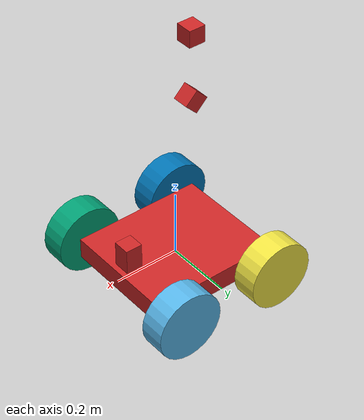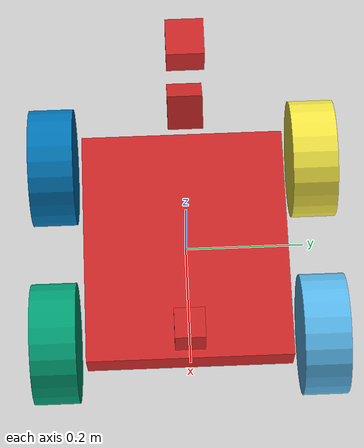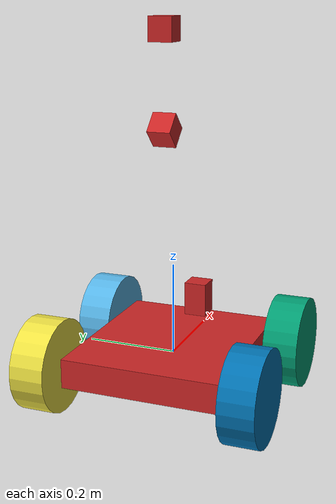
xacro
<?xml version="1.0"?>

<robot name="mecanum" xmlns:xacro="http://www.ros.org/wiki/xacro">

  <!-- include gazebo plugins -->
  <xacro:include filename="$(find mecanum_sim)/urdf/mecanum.gazebo" />

  <xacro:property name="base_width" value="0.3476" />   <!-- 14.5 in -->
  <xacro:property name="base_length" value="0.4" />  <!-- 21 5/8 in -->
  <xacro:property name="base_height" value="0.0635" />   <!-- 2.5 in  -->
  <xacro:property name="wheel_radius" value="0.1016" /> <!-- 4.0 in  -->
  <xacro:property name="wheel_width" value="0.0762" />  <!-- 3.0 in  -->
  <xacro:property name="wheel_gap" value="0.0508" />    <!-- 2.0 in  -->
  <xacro:property name="wheel_setback" value="0.041275" />    <!-- 1 5/8 in  -->
  <xacro:property name="lidar_width" value="0.0508" />    <!-- 2.0 in  -->
  <xacro:property name="lidar_length" value="0.0508" />    <!-- 2.0 in  -->
  <xacro:property name="lidar_height" value="0.0762" />    <!-- 3.0 in  -->
  <xacro:property name="lidar_setback" value="0.0127" />    <!-- 0.5 in  -->
  <xacro:property name="camera_link1" value="0.05" /> <!-- Size of square 'camera' box -->
  <xacro:property name="camera_link2" value="0.05" /> <!-- Size of square 'camera' box -->

  <!--~~~~~~~~~~~~~~~~~~~~~~~~ ~ ROBOT BASE ~ ~~~~~~~~~~~~~~~~~~~~~~~~~~~~~~-->

  <!-- Make a box for robot base -->
  <link name="base_link">

  	<!-- Draw imaginary box around the robot for collision detection -->
    <collision>
      <origin xyz="0 0 0.0" rpy="0 0 0"/>
      <geometry>
       <box size="${base_length} ${base_width} ${base_height}"/>
      </geometry>
    </collision>

    <!-- Describe how to draw the box in 3d -->
    <visual>
      <origin xyz="0 0 0.0" rpy="0 0 0"/>
      <geometry>
	       <box size="${base_length} ${base_width} ${base_height}"/>
      </geometry>
      <material name="red"/>
    </visual>

    <inertial>
      <mass value="1e-3" />
      <origin xyz="0 0 0" rpy="0 0 0"/>
      <inertia ixx="1e-6" ixy="0" ixz="0" iyy="1e-6" iyz="0" izz="1e-6" />
    </inertial>
  </link>

  <link name="fl_link">
      <visual>
        <geometry>
          <cylinder length="${wheel_width}" radius="${wheel_radius}"/>
        </geometry>
        <origin rpy="${pi/2} 0 0" xyz="0 0 0"/>
      </visual>

      <collision>
        <geometry>
          <cylinder length="${wheel_width}" radius="${wheel_radius}"/>
        </geometry>
        <origin rpy="${pi/2} 0 0" xyz="0 0 0"/>
      </collision>

      <inertial>
        <mass value="0.1" />
        <origin rpy="${pi/2} 0 0" xyz="0 0 0"/>
        <inertia ixx="1e-6" ixy="0" ixz="0" iyy="1e-6" iyz="0" izz="1e-6" />
      </inertial>
    </link>

    <link name="fr_link">
        <visual>
          <geometry>
            <cylinder length="${wheel_width}" radius="${wheel_radius}"/>
          </geometry>
          <origin rpy="${pi/2} 0 0" xyz="0 0 0"/>
        </visual>

        <collision>
          <geometry>
            <cylinder length="${wheel_width}" radius="${wheel_radius}"/>
          </geometry>
          <origin rpy="${pi/2} 0 0" xyz="0 0 0"/>
        </collision>

        <inertial>
          <mass value="0.1" />
          <origin rpy="${pi/2} 0 0" xyz="0 0 0"/>
          <inertia ixx="1e-6" ixy="0" ixz="0" iyy="1e-6" iyz="0" izz="1e-6" />
        </inertial>
      </link>
      <link name="bl_link">
          <visual>
            <geometry>
              <cylinder length="${wheel_width}" radius="${wheel_radius}"/>
            </geometry>
            <origin rpy="${pi/2} 0 0" xyz="0 0 0"/>
          </visual>

          <collision>
            <geometry>
              <cylinder length="${wheel_width}" radius="${wheel_radius}"/>
            </geometry>
            <origin rpy="${pi/2} 0 0" xyz="0 0 0"/>
          </collision>

          <inertial>
            <mass value="0.1" />
            <origin rpy="${pi/2} 0 0" xyz="0 0 0"/>
            <inertia ixx="1e-6" ixy="0" ixz="0" iyy="1e-6" iyz="0" izz="1e-6" />
          </inertial>
        </link>

        <link name="br_link">
            <visual>
              <geometry>
                <cylinder length="${wheel_width}" radius="${wheel_radius}"/>
              </geometry>
              <origin rpy="${pi/2} 0 0" xyz="0 0 0"/>
            </visual>

            <collision>
              <geometry>
                <cylinder length="${wheel_width}" radius="${wheel_radius}"/>
              </geometry>
              <origin rpy="${pi/2} 0 0" xyz="0 0 0"/>
            </collision>

            <inertial>
              <mass value="0.1" />
              <origin rpy="${pi/2} 0 0" xyz="0 0 0"/>
              <inertia ixx="1e-6" ixy="0" ixz="0" iyy="1e-6" iyz="0" izz="1e-6" />
            </inertial>
          </link>

  <!--~~~~~~~~~~~~~~~~~~~~~~~ ~ Lidar ~ ~~~~~~~~~~~~~~~~~~~~~~~~~~~~~-->

  <link name="laser_link">

    <collision>
      <origin xyz="0 0 0" rpy="0 0 0"/>
      <geometry>
       <box size="${lidar_length} ${lidar_width} ${lidar_height}"/>
      </geometry>
    </collision>

    <visual>
      <origin xyz="0 0 0" rpy="0 0 0"/>
      <geometry>
	       <box size="${lidar_length} ${lidar_width} ${lidar_height}"/>
      </geometry>
      <material name="red"/>
    </visual>

    <inertial>
      <mass value="1e-4" />
      <origin xyz="0 0 0" rpy="0 0 0"/>
      <inertia ixx="1e-6" ixy="0" ixz="0" iyy="1e-6" iyz="0" izz="1e-6" />
    </inertial>
  </link>

  <joint name="joint1" type="fixed">      <!-- Fused connection? (using continuous tilts view)-->
    <parent link="base_link"/>            <!--      robot link = parent     -->
    <child link="laser_link"/>     <!-- forward camera link = child  -->
    <origin xyz="${base_length/2 - lidar_length/2 - lidar_setback} 0 ${lidar_height}" rpy="0 0 0"/>   <!-- where child is relative to parent -->
    <axis xyz="0 0 0"/>                   <!-- ...describes the axis of rotation? -->
  </joint>

  <joint name="fl_joint" type="fixed">
      <parent link="base_link"/>
      <child link="fl_link"/>
      <origin rpy="0 0 0" xyz="${base_length/2 - wheel_setback} ${base_width/2 + wheel_gap} 0.0"/>
      <axis xyz="0 0 0"/>
  </joint>

  <joint name="fr_joint" type="fixed">
      <parent link="base_link"/>
      <child link="fr_link"/>
      <origin rpy="0 0 0" xyz="${base_length/2 - wheel_setback} ${-base_width/2 - wheel_gap} 0.0"/>
      <axis xyz="0 0 0"/>
  </joint>

  <joint name="bl_joint" type="fixed">
      <parent link="base_link"/>
      <child link="bl_link"/>
      <origin rpy="0 0 0" xyz="${-base_length/2 + wheel_setback} ${base_width/2 + wheel_gap} 0.0"/>
      <axis xyz="0 0 0"/>
  </joint>

  <joint name="br_joint" type="fixed">
      <parent link="base_link"/>
      <child link="br_link"/>
      <origin rpy="0 0 0" xyz="${-base_length/2 + wheel_setback} ${-base_width/2 - wheel_gap} 0.0"/>
      <axis xyz="0 0 0"/>
  </joint>
  <joint name="camera_joint1" type="fixed">
    <axis xyz="0 1 0" />
    <origin xyz="-0.05 0 0.7" rpy="0 0 0"/>
    <parent link="base_link"/>
    <child link="camera_link1"/>
  </joint>

  <!-- Camera -->
  <link name="camera_link1">
    <collision>
      <origin xyz="0 0 0" rpy="0 0 0"/>
      <geometry>
    <box size="${camera_link1} ${camera_link1} ${camera_link1}"/>
      </geometry>
    </collision>

    <visual>
      <origin xyz="0 0 0" rpy="0 0 0"/>
      <geometry>
    <box size="${camera_link1} ${camera_link1} ${camera_link1}"/>
      </geometry>
      <material name="red"/>
    </visual>

    <inertial>
      <mass value="1e-5" />
      <origin xyz="0 0 0" rpy="0 0 0"/>
      <inertia ixx="1e-6" ixy="0" ixz="0" iyy="1e-6" iyz="0" izz="1e-6" />
    </inertial>
  </link>

  <joint name="camera_joint2" type="fixed">
    <axis xyz="0 1 0" />
    <origin xyz="-0.05 0 0.5" rpy="0 0.785 0"/>
    <parent link="base_link"/>
    <child link="camera_link2"/>
  </joint>

  <!-- Camera -->
  <link name="camera_link2">
    <collision>
      <origin xyz="0 0 0" rpy="0 0 0"/>
      <geometry>
    <box size="${camera_link2} ${camera_link2} ${camera_link2}"/>
      </geometry>
    </collision>

    <visual>
      <origin xyz="0 0 0" rpy="0 0 0"/>
      <geometry>
    <box size="${camera_link2} ${camera_link2} ${camera_link2}"/>
      </geometry>
      <material name="red"/>
    </visual>

    <inertial>
      <mass value="1e-5" />
      <origin xyz="0 0 0" rpy="0 0 0"/>
      <inertia ixx="1e-6" ixy="0" ixz="0" iyy="1e-6" iyz="0" izz="1e-6" />
    </inertial>
  </link>

</robot>
